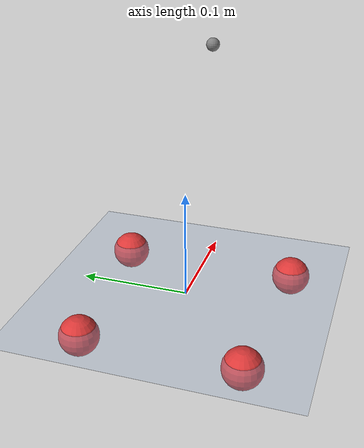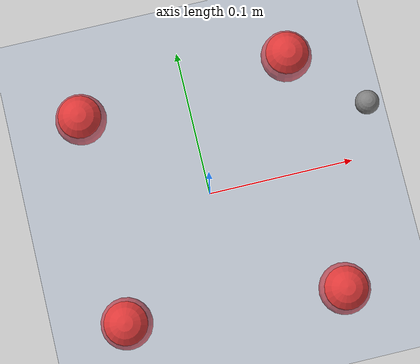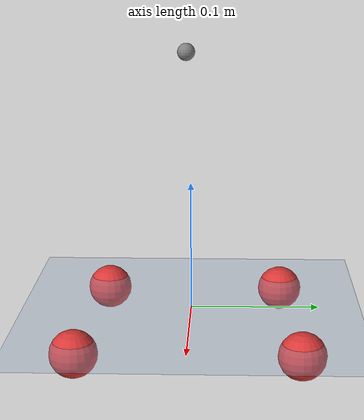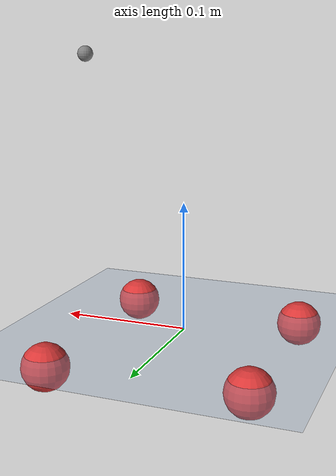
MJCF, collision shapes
<mujoco model="pupper_v3_on_stand">
  <compiler angle="radian" meshdir="meshes/" autolimits="true"/>
  <visual>
    <headlight ambient="0.45 0.45 0.45" diffuse="0.55 0.55 0.55" specular="0.1 0.1 0.1"/>
    <rgba haze="0.15 0.25 0.35 1"/>
  </visual>
  <asset>
    <texture name="skybox" type="skybox" builtin="gradient" rgb1=".3 .5 .7" rgb2="0 0 0" width="512" height="512"/>
  </asset>
  <default>
    <joint armature="0.003" damping="0.04" frictionloss="0.002" limited="true"/>
    <geom rgba="0.62 0.72 0.86 1" contype="0" conaffinity="0"/>
    <default class="variant_torso"><geom type="box" size="0.1 0.055 0.025" mass="1.506" rgba="0 0 0 0"/></default>
    <default class="variant_ballast"><geom type="box" size="0.001 0.001 0.001" mass="0" rgba="0 0 0 0" contype="0" conaffinity="0"/></default>
    <default class="variant_hip"><geom type="sphere" size="0.026" mass="0.045" rgba="0 0 0 0"/></default>
    <default class="variant_thigh"><geom type="capsule" fromto="0 0 0 0 0 -0.08" size="0.013" mass="0.186" rgba="0 0 0 0"/></default>
    <default class="variant_calf"><geom type="capsule" fromto="0 0 0 0 0 -0.11" size="0.011" mass="0.05" rgba="0 0 0 0"/></default>
    <default class="variant_foot"><geom type="sphere" pos="0 0 -0.11" size="0.018" mass="0.02" rgba="0.86 0.22 0.22 1" contype="1" conaffinity="1" condim="3" friction="1.2 0.04 0.01"/><site pos="0 0 -0.11" size="0.015" rgba="1 0.2 0.2 1"/></default>
  </default>
  <include file="skeleton.xml"/>
  <worldbody>
    <light name="spotlight" mode="targetbodycom" target="base" diffuse="0.9 0.9 0.9" specular="0.3 0.3 0.3" pos="0 -4 4" cutoff="100"/>
  </worldbody>
  <equality>
    <!-- Lab 5 用 weld 把完整 Pupper 固定在空中，只看 gait phase pattern。 -->
    <weld body1="world" body2="base" relpose="0 0 0.18 1 0 0 0" solref="0.001 1" solimp="0.99 0.99 0.001"/>
  </equality>
</mujoco>

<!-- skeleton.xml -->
<mujoco model="shared_pupper_skeleton">
  <!-- Lab 4+: 完整 12-DoF Pupper skeleton。变体文件在 include 前注入 variant_* default。 -->
  <asset>
    <texture name="grid" type="2d" builtin="checker" width="512" height="512" rgb1=".2 .4 .6" rgb2=".4 .6 .8"/>
    <material name="grid" texture="grid" texrepeat="1 1" texuniform="true" reflectance="0"/>
    <mesh name="body" file="BodyV4v70_001.stl"/>
    <mesh name="hip_mesh" file="LegAssemblyForFlangedv26_010.stl" scale="1 -1 1"/>
    <mesh name="upper_leg_mesh" file="LegAssemblyForFlangedv26_011.stl" scale="1 1 -1"/>
    <mesh name="lower_leg_mesh" file="LegAssemblyForFlangedv26_012.stl" scale="1 1 -1"/>
  </asset>

  <option gravity="0 0 -9.81" timestep="0.004" cone="elliptic" impratio="50"/>

  <worldbody>
    <geom name="floor" type="plane" size="2 2 .05" material="grid" condim="3" contype="1" conaffinity="1"/>
    <light name="key" pos="0 0 3" dir="0 0 -1" diffuse="1 1 1"/>
    <camera name="iso" pos="0.70 -0.95 0.58" xyaxes="0.805 0.593 0 -0.233 0.316 0.920"/>

    <body name="base" pos="0 0 0.18">
      <freejoint name="root"/>
      <geom name="torso_mass" class="variant_torso" pos="0.01 0 0.02"/>
      <geom name="torso_ballast" class="variant_ballast" pos="0.01 0 0.075"/>
      <geom name="torso_mesh" type="mesh" mesh="body" quat="0.499998 -0.5 -0.500002 0.5" group="1" contype="0" conaffinity="0" density="0"/>
      <site name="body_imu_site" pos="0.08 0 0.03" size="0.006"/>

      <body name="FL_hip" pos="0.075 0.0835 0">
        <joint name="FL_HAA" type="hinge" axis="1 0 0" range="-0.8 0.8"/>
        <geom name="FL_hip_mass" class="variant_hip"/>
        <geom name="FL_hip_mesh" type="mesh" mesh="hip_mesh" group="1" contype="0" conaffinity="0" density="0"/>
        <body name="FL_thigh">
          <joint name="FL_HFE" type="hinge" axis="0 1 0" range="-1.8 1.2"/>
          <geom name="FL_thigh_capsule" class="variant_thigh"/>
          <geom name="FL_thigh_mesh" type="mesh" mesh="upper_leg_mesh" group="1" contype="0" conaffinity="0" density="0"/>
          <body name="FL_calf" pos="0 0 -0.08">
            <joint name="FL_KFE" type="hinge" axis="0 1 0" range="-2.6 0.1"/>
            <geom name="FL_calf_capsule" class="variant_calf"/>
            <geom name="FL_calf_mesh" type="mesh" mesh="lower_leg_mesh" group="1" contype="0" conaffinity="0" density="0"/>
            <geom name="FL_foot_geom" class="variant_foot"/>
            <site name="FL_foot" class="variant_foot"/>
          </body>
        </body>
      </body>

      <body name="FR_hip" pos="0.075 -0.0835 0">
        <joint name="FR_HAA" type="hinge" axis="1 0 0" range="-0.8 0.8"/>
        <geom name="FR_hip_mass" class="variant_hip"/>
        <geom name="FR_hip_mesh" type="mesh" mesh="hip_mesh" group="1" contype="0" conaffinity="0" density="0"/>
        <body name="FR_thigh">
          <joint name="FR_HFE" type="hinge" axis="0 1 0" range="-1.8 1.2"/>
          <geom name="FR_thigh_capsule" class="variant_thigh"/>
          <geom name="FR_thigh_mesh" type="mesh" mesh="upper_leg_mesh" group="1" contype="0" conaffinity="0" density="0"/>
          <body name="FR_calf" pos="0 0 -0.08">
            <joint name="FR_KFE" type="hinge" axis="0 1 0" range="-2.6 0.1"/>
            <geom name="FR_calf_capsule" class="variant_calf"/>
            <geom name="FR_calf_mesh" type="mesh" mesh="lower_leg_mesh" group="1" contype="0" conaffinity="0" density="0"/>
            <geom name="FR_foot_geom" class="variant_foot"/>
            <site name="FR_foot" class="variant_foot"/>
          </body>
        </body>
      </body>

      <body name="RL_hip" pos="-0.075 0.0725 0">
        <joint name="RL_HAA" type="hinge" axis="1 0 0" range="-0.8 0.8"/>
        <geom name="RL_hip_mass" class="variant_hip"/>
        <geom name="RL_hip_mesh" type="mesh" mesh="hip_mesh" group="1" contype="0" conaffinity="0" density="0"/>
        <body name="RL_thigh">
          <joint name="RL_HFE" type="hinge" axis="0 1 0" range="-1.8 1.2"/>
          <geom name="RL_thigh_capsule" class="variant_thigh"/>
          <geom name="RL_thigh_mesh" type="mesh" mesh="upper_leg_mesh" group="1" contype="0" conaffinity="0" density="0"/>
          <body name="RL_calf" pos="0 0 -0.08">
            <joint name="RL_KFE" type="hinge" axis="0 1 0" range="-2.6 0.1"/>
            <geom name="RL_calf_capsule" class="variant_calf"/>
            <geom name="RL_calf_mesh" type="mesh" mesh="lower_leg_mesh" group="1" contype="0" conaffinity="0" density="0"/>
            <geom name="RL_foot_geom" class="variant_foot"/>
            <site name="RL_foot" class="variant_foot"/>
          </body>
        </body>
      </body>

      <body name="RR_hip" pos="-0.075 -0.0725 0">
        <joint name="RR_HAA" type="hinge" axis="1 0 0" range="-0.8 0.8"/>
        <geom name="RR_hip_mass" class="variant_hip"/>
        <geom name="RR_hip_mesh" type="mesh" mesh="hip_mesh" group="1" contype="0" conaffinity="0" density="0"/>
        <body name="RR_thigh">
          <joint name="RR_HFE" type="hinge" axis="0 1 0" range="-1.8 1.2"/>
          <geom name="RR_thigh_capsule" class="variant_thigh"/>
          <geom name="RR_thigh_mesh" type="mesh" mesh="upper_leg_mesh" group="1" contype="0" conaffinity="0" density="0"/>
          <body name="RR_calf" pos="0 0 -0.08">
            <joint name="RR_KFE" type="hinge" axis="0 1 0" range="-2.6 0.1"/>
            <geom name="RR_calf_capsule" class="variant_calf"/>
            <geom name="RR_calf_mesh" type="mesh" mesh="lower_leg_mesh" group="1" contype="0" conaffinity="0" density="0"/>
            <geom name="RR_foot_geom" class="variant_foot"/>
            <site name="RR_foot" class="variant_foot"/>
          </body>
        </body>
      </body>
    </body>
  </worldbody>

  <actuator>
    <general name="FL_HAA_motor" joint="FL_HAA" forcerange="-18 18" forcelimited="true" gainprm="1 0 0" biasprm="0 0 0"/>
    <general name="FL_HFE_motor" joint="FL_HFE" forcerange="-18 18" forcelimited="true" gainprm="1 0 0" biasprm="0 0 0"/>
    <general name="FL_KFE_motor" joint="FL_KFE" forcerange="-18 18" forcelimited="true" gainprm="1 0 0" biasprm="0 0 0"/>
    <general name="FR_HAA_motor" joint="FR_HAA" forcerange="-18 18" forcelimited="true" gainprm="1 0 0" biasprm="0 0 0"/>
    <general name="FR_HFE_motor" joint="FR_HFE" forcerange="-18 18" forcelimited="true" gainprm="1 0 0" biasprm="0 0 0"/>
    <general name="FR_KFE_motor" joint="FR_KFE" forcerange="-18 18" forcelimited="true" gainprm="1 0 0" biasprm="0 0 0"/>
    <general name="RL_HAA_motor" joint="RL_HAA" forcerange="-18 18" forcelimited="true" gainprm="1 0 0" biasprm="0 0 0"/>
    <general name="RL_HFE_motor" joint="RL_HFE" forcerange="-18 18" forcelimited="true" gainprm="1 0 0" biasprm="0 0 0"/>
    <general name="RL_KFE_motor" joint="RL_KFE" forcerange="-18 18" forcelimited="true" gainprm="1 0 0" biasprm="0 0 0"/>
    <general name="RR_HAA_motor" joint="RR_HAA" forcerange="-18 18" forcelimited="true" gainprm="1 0 0" biasprm="0 0 0"/>
    <general name="RR_HFE_motor" joint="RR_HFE" forcerange="-18 18" forcelimited="true" gainprm="1 0 0" biasprm="0 0 0"/>
    <general name="RR_KFE_motor" joint="RR_KFE" forcerange="-18 18" forcelimited="true" gainprm="1 0 0" biasprm="0 0 0"/>
  </actuator>
</mujoco>
